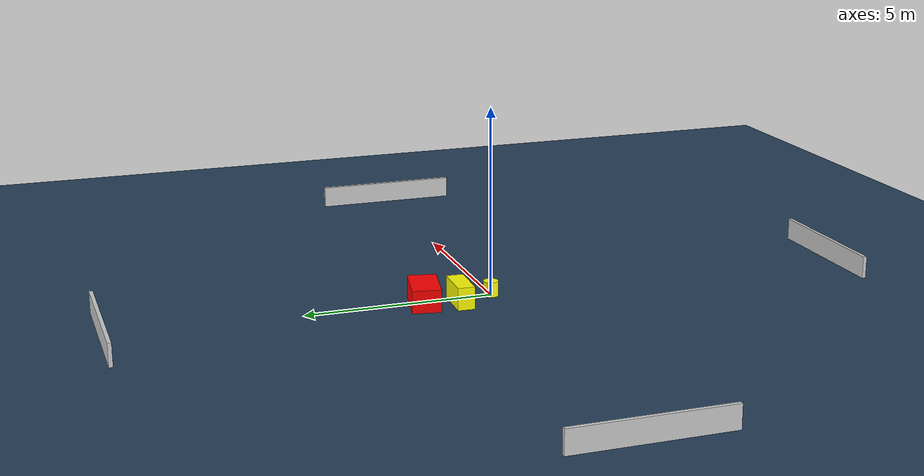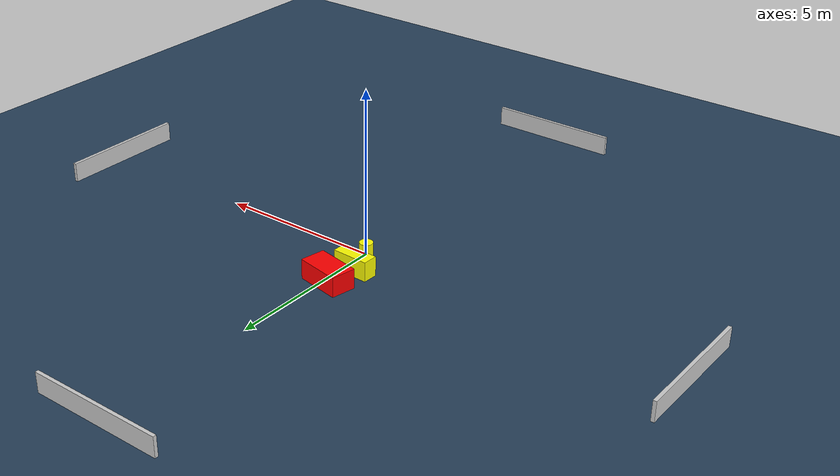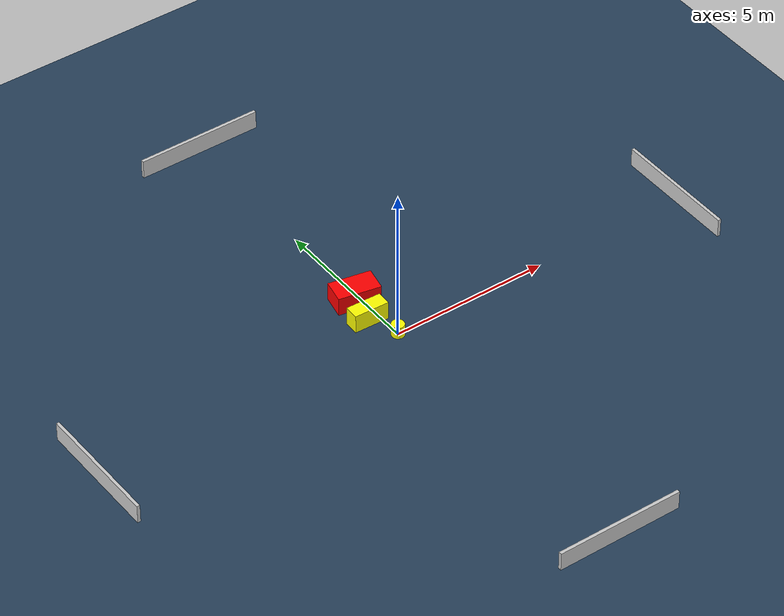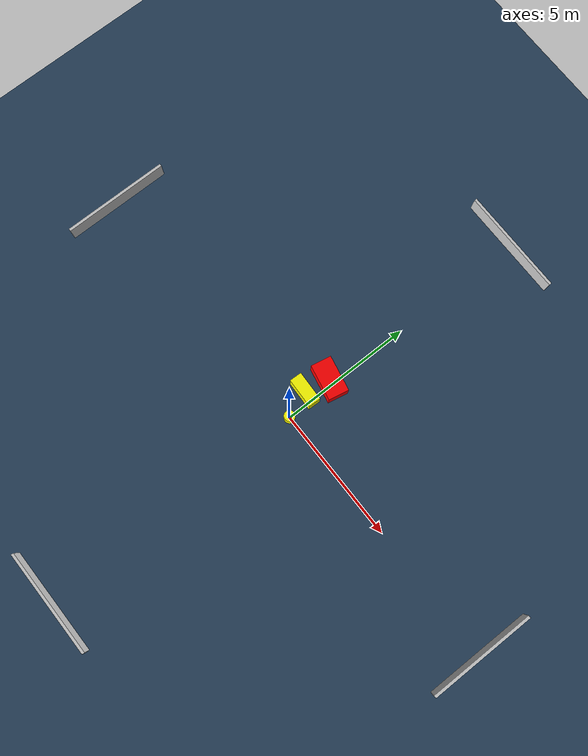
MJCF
<?xml version="1.0" ?>
<mujoco model="generated_environment">
  <option timestep="0.01" integrator="RK4" cone="elliptic"/>
  <default>
    <geom density="1"/>
  </default>
  <asset>
    <texture builtin="gradient" height="3072" name="skybox" rgb1="0.3 0.5 0.7" rgb2="0 0 0" type="skybox" width="512"/>
    <texture builtin="checker" height="300" name="groundplane" rgb1="0.2 0.3 0.4" rgb2="0.1 0.2 0.3" type="2d" width="300"/>
    <material name="groundplane" reflectance="0.2" texrepeat="5 5" texture="groundplane"/>
  </asset>
  <worldbody>
    <light dir="0 0 -1" directional="true" pos="0 0 1.5"/>
    <geom condim="3" friction="0.5 0.005 0.001" material="groundplane" name="floor" pos="0 0 0" size="0 0 0.05" type="plane"/>
    <body name="walls">
      <geom name="wall_1" condim="4" pos="-10.0 0.0 0.3" rgba="0.800000011920929 0.800000011920929 0.800000011920929 1.0" size="0.05 2.0 0.3" type="box"/>
      <geom name="wall_2" condim="4" pos="10.0 0.0 0.3" rgba="0.800000011920929 0.800000011920929 0.800000011920929 1.0" size="0.05 2.0 0.3" type="box"/>
      <geom name="wall_3" condim="4" pos="0.0 -10.0 0.3" rgba="0.800000011920929 0.800000011920929 0.800000011920929 1.0" size="2.0 0.05 0.3" type="box"/>
      <geom name="wall_4" condim="4" pos="0.0 10.0 0.3" rgba="0.800000011920929 0.800000011920929 0.800000011920929 1.0" size="2.0 0.05 0.3" type="box"/>
    </body>
    <body name="robot">
      <joint name="joint_x" type="slide" pos="0 0 0" axis="1 0 0"/>
      <joint name="joint_y" type="slide" pos="0 0 0" axis="0 1 0"/>
      <geom name="robot" type="cylinder" pos="0.0 0.0 0.2" size="0.2 0.2 0.0" mass="5.0" friction="1.0 0.005 0.0001" condim="4" rgba="1.0 1.0 0.0 1.0"/>
    </body>
    <body name="obstacle_1_movable">
      <geom name="obstacle_1_movable" condim="4" pos="-0.36155581165967965 0.9571347653789898 0.3" euler="0 0 87.80936110828655" friction="0.0 0.005 0.001" rgba="1.0 1.0 0.0 1.0" size="0.22724590558221133 0.5537084820608612 0.3" type="box" mass="0.1"/>
      <joint type="free"/>
    </body>
    <body name="obstacle_2_static">
      <geom name="obstacle_2_static" condim="4" pos="-0.15858639132931088 1.8721661928645905 0.3" euler="0 0 168.8356221059346" friction="0.0 0.005 0.001" rgba="1.0 0.0 0.0 1.0" size="0.6679467822285471 0.37961438183539964 0.3" type="box"/>
    </body>
  </worldbody>
  <actuator>
    <motor name="actuator_x" joint="joint_x" gear="1" ctrlrange="-1 1"/>
    <motor name="actuator_y" joint="joint_y" gear="1" ctrlrange="-1 1"/>
  </actuator>
</mujoco>
